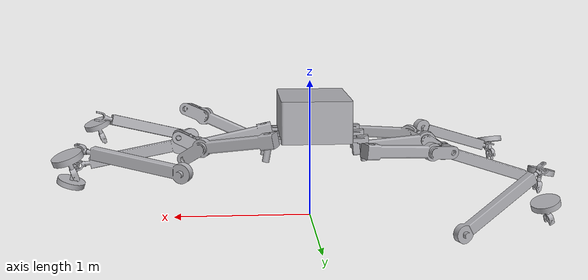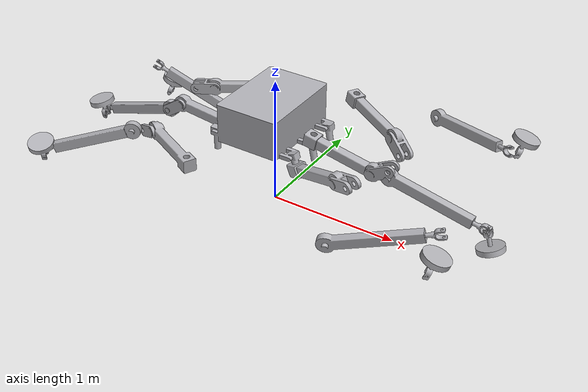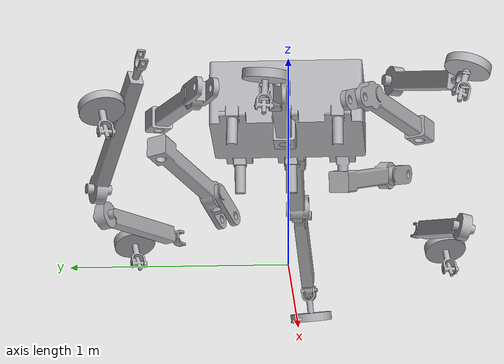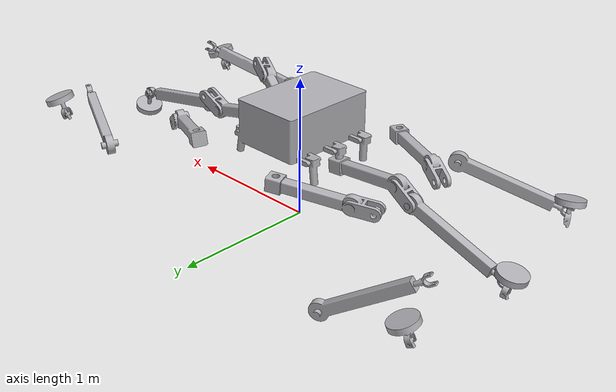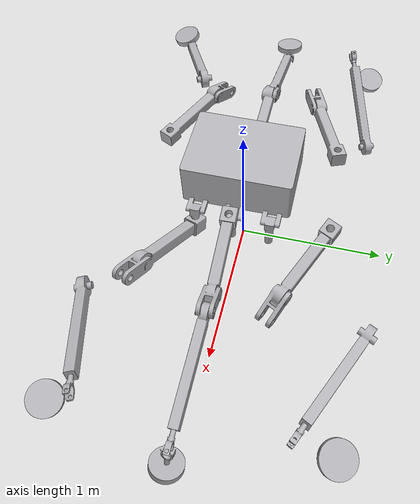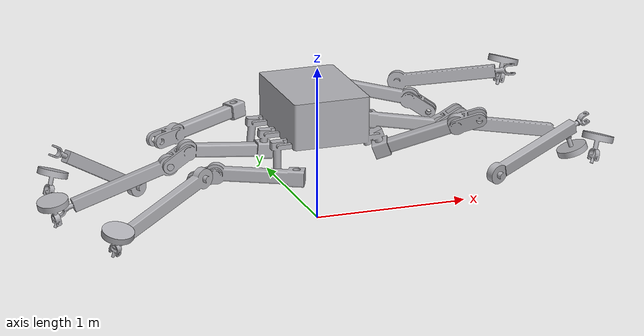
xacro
<?xml version="1.0"?>
<robot name="zhizhu" xmlns:xacro="http://www.ros.org/wiki/xacro">

  <material name="zhizhu_gray"><color rgba="0.7 0.7 0.72 1.0"/></material>

  <xacro:macro name="leg" params="name hip knee ankle hip_axis knee_axis ankle_axis coxa_origin femur_origin foot_origin coxa_ixx coxa_iyy coxa_izz femur_ixx femur_iyy femur_izz foot_ixx foot_iyy foot_izz">
    <link name="${name}_coxa">
      <visual><origin xyz="${coxa_origin}"/><geometry><mesh filename="file:///home/khalil/ROS/zhizhu/install/zhizhu_description/share/zhizhu_description/meshes/parts_urdf/${name}_coxa.stl"/></geometry><material name="zhizhu_gray"/></visual>
      <collision><origin xyz="${coxa_origin}"/><geometry><mesh filename="file:///home/khalil/ROS/zhizhu/install/zhizhu_description/share/zhizhu_description/meshes/parts_urdf/${name}_coxa.stl"/></geometry></collision>
      <inertial><mass value="1.5"/><inertia ixx="${coxa_ixx}" ixy="0" ixz="0" iyy="${coxa_iyy}" iyz="0" izz="${coxa_izz}"/></inertial>
    </link>
    <link name="${name}_femur">
      <visual><origin xyz="${femur_origin}"/><geometry><mesh filename="file:///home/khalil/ROS/zhizhu/install/zhizhu_description/share/zhizhu_description/meshes/parts_urdf/${name}_femur.stl"/></geometry><material name="zhizhu_gray"/></visual>
      <collision><origin xyz="${femur_origin}"/><geometry><mesh filename="file:///home/khalil/ROS/zhizhu/install/zhizhu_description/share/zhizhu_description/meshes/parts_urdf/${name}_femur.stl"/></geometry></collision>
      <inertial><mass value="1.0"/><inertia ixx="${femur_ixx}" ixy="0" ixz="0" iyy="${femur_iyy}" iyz="0" izz="${femur_izz}"/></inertial>
    </link>
    <link name="${name}_foot">
      <visual><origin xyz="${foot_origin}"/><geometry><mesh filename="file:///home/khalil/ROS/zhizhu/install/zhizhu_description/share/zhizhu_description/meshes/parts_urdf/${name}_foot.stl"/></geometry><material name="zhizhu_gray"/></visual>
      <collision><origin xyz="${foot_origin}"/><geometry><mesh filename="file:///home/khalil/ROS/zhizhu/install/zhizhu_description/share/zhizhu_description/meshes/parts_urdf/${name}_foot.stl"/></geometry></collision>
      <inertial><mass value="0.8"/><inertia ixx="${foot_ixx}" ixy="0" ixz="0" iyy="${foot_iyy}" iyz="0" izz="${foot_izz}"/></inertial>
    </link>
    <joint name="hip_${name}" type="revolute"><parent link="body"/><child link="${name}_coxa"/><origin xyz="${hip}"/><axis xyz="${hip_axis}"/><limit lower="-1.57" upper="1.57" effort="50" velocity="5"/><dynamics damping="0.5" friction="0.5"/></joint>
    <joint name="knee_${name}" type="revolute"><parent link="${name}_coxa"/><child link="${name}_femur"/><origin xyz="${knee}"/><axis xyz="${knee_axis}"/><limit lower="-1.57" upper="1.57" effort="50" velocity="5"/><dynamics damping="0.5" friction="0.5"/></joint>
    <joint name="ankle_${name}" type="revolute"><parent link="${name}_femur"/><child link="${name}_foot"/><origin xyz="${ankle}"/><axis xyz="${ankle_axis}"/><limit lower="-3.14" upper="3.14" effort="30" velocity="5"/><dynamics damping="0.5" friction="0.5"/></joint>
  </xacro:macro>

  <link name="body">
    <visual><origin xyz="-0.0226 -0.0000 0.6012"/><geometry><mesh filename="file:///home/khalil/ROS/zhizhu/install/zhizhu_description/share/zhizhu_description/meshes/parts_urdf/body.stl"/></geometry><material name="zhizhu_gray"/></visual>
    <collision><origin xyz="-0.0226 -0.0000 0.6012"/><geometry><mesh filename="file:///home/khalil/ROS/zhizhu/install/zhizhu_description/share/zhizhu_description/meshes/parts_urdf/body.stl"/></geometry></collision>
    <inertial><mass value="8.0"/><inertia ixx="1.5" ixy="0" ixz="0" iyy="1.2" iyz="0" izz="1.8"/></inertial>
  </link>

  <xacro:leg name="rf" hip="0.3304 0.2647 0.4563" knee="0.5452 0.2187 0.2207" ankle="0.6843 0.3192 -0.0840" hip_axis="0.0000 0.0000 1.0000" knee_axis="0.4234 -0.9059 0.0000" ankle_axis="0.9059 0.4234 0.0000" coxa_origin="0.3762 0.1602 0.1338" femur_origin="0.4519 0.2318 -0.0762" foot_origin="0.0112 0.0129 -0.0569" coxa_ixx="0.0294" coxa_iyy="0.0689" coxa_izz="0.0803" femur_ixx="0.0167" femur_iyy="0.0544" femur_izz="0.0641" foot_ixx="0.0058" foot_iyy="0.0058" foot_izz="0.0055"/>
  <xacro:leg name="rm" hip="0.3260 -0.0216 0.4551" knee="0.6041 0.0354 0.0832" ankle="0.7681 -0.0474 -0.1054" hip_axis="0.0000 0.0000 1.0000" knee_axis="-0.0178 -0.9998 0.0000" ankle_axis="0.9998 -0.0178 0.0000" coxa_origin="0.4242 0.0135 0.1161" femur_origin="0.5039 -0.0340 -0.0918" foot_origin="0.0076 0.0081 -0.0679" coxa_ixx="0.0081" coxa_iyy="0.0728" coxa_izz="0.0680" femur_ixx="0.0063" femur_iyy="0.0636" femur_izz="0.0594" foot_ixx="0.0058" foot_iyy="0.0058" foot_izz="0.0055"/>
  <xacro:leg name="rr" hip="0.3477 -0.2588 0.4591" knee="0.5621 -0.2553 0.2508" ankle="0.6904 -0.2255 -0.1547" hip_axis="0.0000 0.0000 1.0000" knee_axis="-0.3460 -0.9382 0.0000" ankle_axis="0.9382 -0.3460 0.0000" coxa_origin="0.3716 -0.1473 0.1992" femur_origin="0.4440 -0.1260 -0.1164" foot_origin="-0.0037 0.0244 -0.0656" coxa_ixx="0.0320" coxa_iyy="0.0750" coxa_izz="0.0784" femur_ixx="0.0171" femur_iyy="0.0606" femur_izz="0.0609" foot_ixx="0.0056" foot_iyy="0.0055" foot_izz="0.0054"/>
  <xacro:leg name="lf" hip="-0.3908 0.2529 0.4574" knee="-0.5490 0.2521 0.0893" ankle="-0.6506 0.2160 -0.3368" hip_axis="0.0000 0.0000 1.0000" knee_axis="0.3668 0.9303 -0.0000" ankle_axis="-0.9303 0.3668 0.0000" coxa_origin="-0.3739 0.1531 0.0876" femur_origin="-0.4183 0.1350 -0.2354" foot_origin="0.0265 -0.0059 -0.0642" coxa_ixx="0.0213" coxa_iyy="0.0697" coxa_izz="0.0839" femur_ixx="0.0291" femur_iyy="0.0632" femur_izz="0.0515" foot_ixx="0.0058" foot_iyy="0.0058" foot_izz="0.0055"/>
  <xacro:leg name="lm" hip="-0.3772 -0.0234 0.4559" knee="-0.6265 0.0103 0.0005" ankle="-0.7223 0.0468 -0.1850" hip_axis="0.0000 0.0000 1.0000" knee_axis="0.0183 0.9998 -0.0000" ankle_axis="-0.9998 0.0183 0.0000" coxa_origin="-0.4133 0.0314 0.0647" femur_origin="-0.4518 0.0333 -0.1382" foot_origin="0.0098 -0.0081 -0.0653" coxa_ixx="0.0063" coxa_iyy="0.0701" coxa_izz="0.0671" femur_ixx="0.0105" femur_iyy="0.0652" femur_izz="0.0568" foot_ixx="0.0056" foot_iyy="0.0057" foot_izz="0.0055"/>
  <xacro:leg name="lr" hip="-0.3693 -0.2232 0.4541" knee="-0.5889 -0.2758 0.1050" ankle="-0.6218 -0.3037 -0.2112" hip_axis="0.0000 0.0000 1.0000" knee_axis="-0.4290 0.9033 0.0000" ankle_axis="-0.9033 -0.4290 0.0000" coxa_origin="-0.3733 -0.2018 0.0580" femur_origin="-0.3955 -0.2162 -0.1580" foot_origin="0.0002 -0.0129 -0.0580" coxa_ixx="0.0238" coxa_iyy="0.0659" coxa_izz="0.0830" femur_ixx="0.0226" femur_iyy="0.0570" femur_izz="0.0607" foot_ixx="0.0057" foot_iyy="0.0057" foot_izz="0.0055"/>

</robot>
